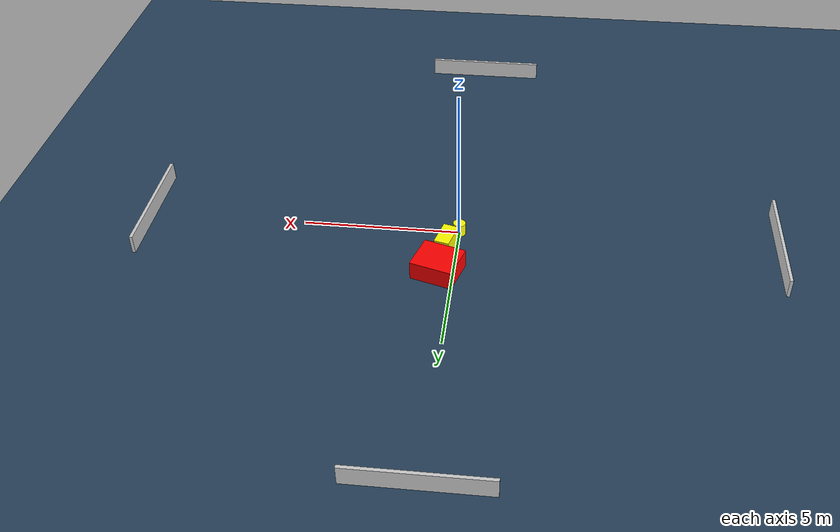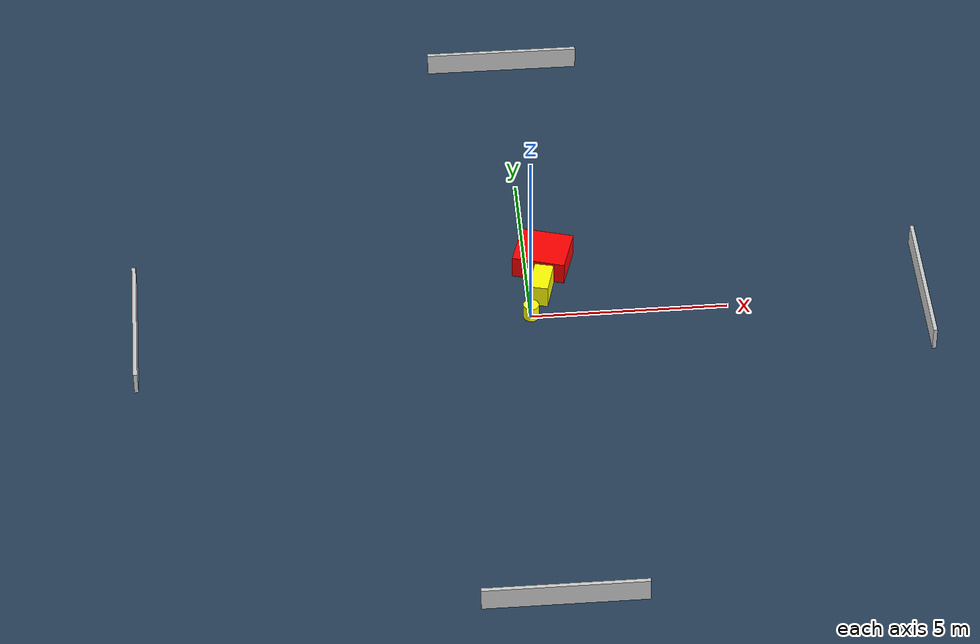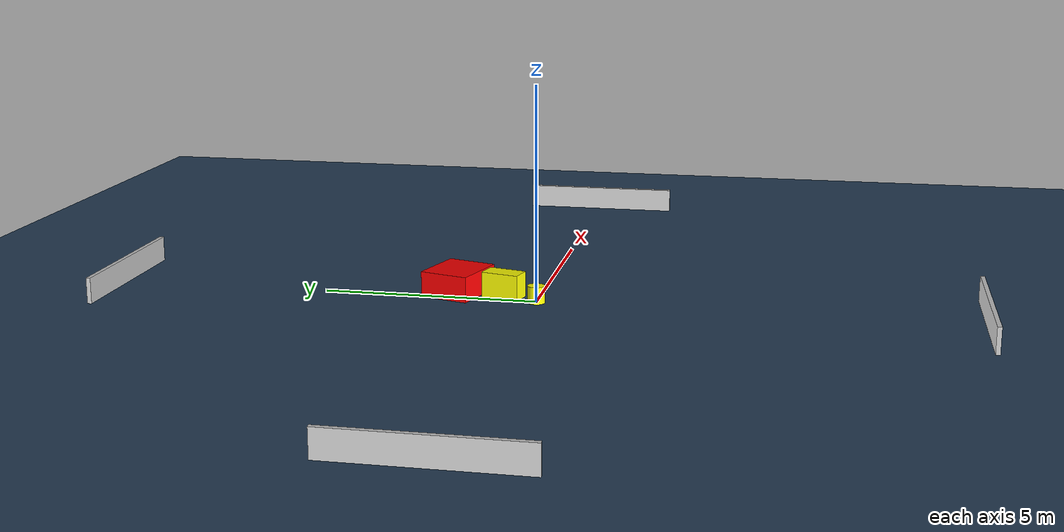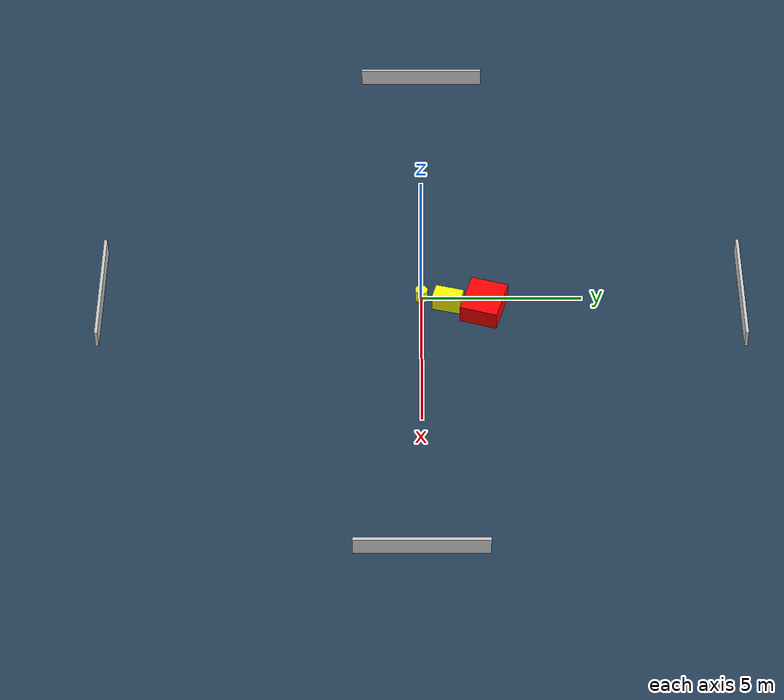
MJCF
<?xml version="1.0" ?>
<mujoco model="generated_environment">
  <option timestep="0.01" integrator="RK4" cone="elliptic"/>
  <default>
    <geom density="1"/>
  </default>
  <asset>
    <texture builtin="gradient" height="3072" name="skybox" rgb1="0.3 0.5 0.7" rgb2="0 0 0" type="skybox" width="512"/>
    <texture builtin="checker" height="300" name="groundplane" rgb1="0.2 0.3 0.4" rgb2="0.1 0.2 0.3" type="2d" width="300"/>
    <material name="groundplane" reflectance="0.2" texrepeat="5 5" texture="groundplane"/>
  </asset>
  <worldbody>
    <light dir="0 0 -1" directional="true" pos="0 0 1.5"/>
    <geom condim="3" friction="0.5 0.005 0.001" material="groundplane" name="floor" pos="0 0 0" size="0 0 0.05" type="plane"/>
    <body name="walls">
      <geom name="wall_1" condim="4" pos="-10.0 0.0 0.3" rgba="0.800000011920929 0.800000011920929 0.800000011920929 1.0" size="0.05 2.0 0.3" type="box"/>
      <geom name="wall_2" condim="4" pos="10.0 0.0 0.3" rgba="0.800000011920929 0.800000011920929 0.800000011920929 1.0" size="0.05 2.0 0.3" type="box"/>
      <geom name="wall_3" condim="4" pos="0.0 -10.0 0.3" rgba="0.800000011920929 0.800000011920929 0.800000011920929 1.0" size="2.0 0.05 0.3" type="box"/>
      <geom name="wall_4" condim="4" pos="0.0 10.0 0.3" rgba="0.800000011920929 0.800000011920929 0.800000011920929 1.0" size="2.0 0.05 0.3" type="box"/>
    </body>
    <body name="robot">
      <joint name="joint_x" type="slide" pos="0 0 0" axis="1 0 0"/>
      <joint name="joint_y" type="slide" pos="0 0 0" axis="0 1 0"/>
      <geom name="robot" type="cylinder" pos="0.0 0.0 0.2" size="0.2 0.2 0.0" mass="5.0" friction="1.0 0.005 0.0001" condim="4" rgba="1.0 1.0 0.0 1.0"/>
    </body>
    <body name="obstacle_1_movable">
      <geom name="obstacle_1_movable" condim="4" pos="0.3255902912438443 0.8289352041464408 0.3" euler="0 0 75.77426903972419" friction="0.0 0.005 0.001" rgba="1.0 1.0 0.0 1.0" size="0.4470114048386604 0.24229889034679417 0.3" type="box" mass="0.1"/>
      <joint type="free"/>
    </body>
    <body name="obstacle_2_static">
      <geom name="obstacle_2_static" condim="4" pos="0.45858328578011615 1.946360617789252 0.3" euler="0 0 163.41330527677255" friction="0.0 0.005 0.001" rgba="1.0 0.0 0.0 1.0" size="0.67649842151226 0.5897017358558259 0.3" type="box"/>
    </body>
  </worldbody>
  <actuator>
    <motor name="actuator_x" joint="joint_x" gear="1" ctrlrange="-1 1"/>
    <motor name="actuator_y" joint="joint_y" gear="1" ctrlrange="-1 1"/>
  </actuator>
</mujoco>
